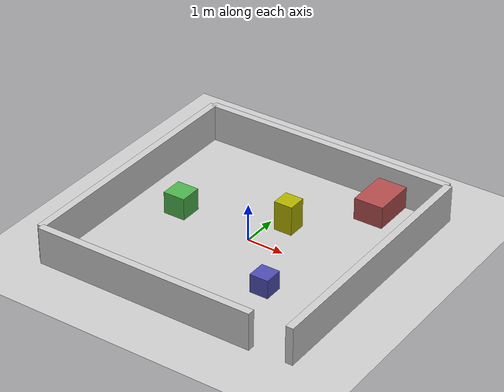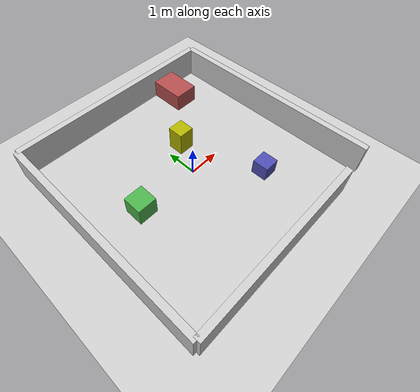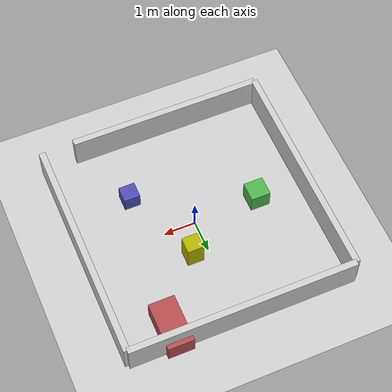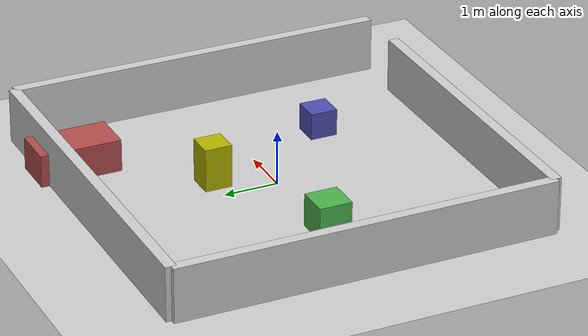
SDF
<?xml version="1.0" ?>
<sdf version="1.6">
  <world name="apartment">
    <!-- Physics Engine -->
    <physics name="default_physics" default="true" type="ode">
      <max_step_size>0.001</max_step_size>
      <real_time_factor>1.0</real_time_factor>
      <real_time_update_rate>1000</real_time_update_rate>
    </physics>

    <!-- Scene and Lighting -->
    <scene>
      <ambient>0.4 0.4 0.4 1.0</ambient>
      <background>0.7 0.7 0.7 1.0</background>
      <shadows>true</shadows>
      <grid>true</grid>
      <origin_visual>true</origin_visual>
    </scene>

    <!-- Light Source -->
    <include>
      <uri>model://sun</uri>
    </include>

    <!-- Ground Plane -->
    <include>
      <uri>model://ground_plane</uri>
      <pose>0 0 0 0 0 0</pose>
    </include>

    <!-- North Wall (horizontal, full 7m, 0.2m thick) -->
    <model name="wall_north">
      <static>true</static>
      <pose>0 3.5 0.5 0 0 0</pose>
      <link name="link">
        <inertial>
          <mass>14.0</mass>
          <inertia>
            <ixx>1.4</ixx>
            <ixy>0.0</ixy>
            <ixz>0.0</ixz>
            <iyy>1.4</iyy>
            <iyz>0.0</iyz>
            <izz>1.4</izz>
          </inertia>
        </inertial>
        <collision name="collision">
          <geometry>
            <box>
              <size>7 0.2 1</size>
            </box>
          </geometry>
        </collision>
        <visual name="visual">
          <geometry>
            <box>
              <size>7 0.2 1</size>
            </box>
          </geometry>
          <material>
            <ambient>0.8 0.8 0.8 1</ambient>
            <diffuse>0.8 0.8 0.8 1</diffuse>
          </material>
        </visual>
      </link>
    </model>

    <!-- South Wall (horizontal, 6m with 1m door gap on left) -->
    <model name="wall_south">
      <static>true</static>
      <pose>-0.5 -3.5 0.5 0 0 0</pose>
      <link name="link">
        <inertial>
          <mass>16.8</mass>
          <inertia>
            <ixx>1.68</ixx>
            <ixy>0.0</ixy>
            <ixz>0.0</ixz>
            <iyy>1.68</iyy>
            <iyz>0.0</iyz>
            <izz>1.68</izz>
          </inertia>
        </inertial>
        <collision name="collision">
          <geometry>
            <box>
              <size>6 0.2 1</size>
            </box>
          </geometry>
        </collision>
        <visual name="visual">
          <geometry>
            <box>
              <size>6 0.2 1</size>
            </box>
          </geometry>
          <material>
            <ambient>0.8 0.8 0.8 1</ambient>
            <diffuse>0.8 0.8 0.8 1</diffuse>
          </material>
        </visual>
      </link>
    </model>

    <!-- East Wall (horizontal, 0.2m thick, 7m long) -->
    <model name="wall_east">
      <static>true</static>
      <pose>3.5 0 0.5 0 0 0</pose>
      <link name="link">
        <inertial>
          <mass>14.0</mass>
          <inertia>
            <ixx>1.4</ixx>
            <ixy>0.0</ixy>
            <ixz>0.0</ixz>
            <iyy>1.4</iyy>
            <iyz>0.0</iyz>
            <izz>1.4</izz>
          </inertia>
        </inertial>
        <collision name="collision">
          <geometry>
            <box>
              <size>0.2 7 1</size>
            </box>
          </geometry>
        </collision>
        <visual name="visual">
          <geometry>
            <box>
              <size>0.2 7 1</size>
            </box>
          </geometry>
          <material>
            <ambient>0.8 0.8 0.8 1</ambient>
            <diffuse>0.8 0.8 0.8 1</diffuse>
          </material>
        </visual>
      </link>
    </model>

    <!-- West Wall (horizontal, 0.2m thick, 7m long) -->
    <model name="wall_west">
      <static>true</static>
      <pose>-3.5 0 0.5 0 0 0</pose>
      <link name="link">
        <inertial>
          <mass>14.0</mass>
          <inertia>
            <ixx>1.4</ixx>
            <ixy>0.0</ixy>
            <ixz>0.0</ixz>
            <iyy>1.4</iyy>
            <iyz>0.0</iyz>
            <izz>1.4</izz>
          </inertia>
        </inertial>
        <collision name="collision">
          <geometry>
            <box>
              <size>0.2 7 1</size>
            </box>
          </geometry>
        </collision>
        <visual name="visual">
          <geometry>
            <box>
              <size>0.2 7 1</size>
            </box>
          </geometry>
          <material>
            <ambient>0.8 0.8 0.8 1</ambient>
            <diffuse>0.8 0.8 0.8 1</diffuse>
          </material>
        </visual>
      </link>
    </model>

    <!-- Sofa (Red, reduced size) -->
    <model name="sofa">
      <static>true</static>
      <pose>2 3 0.3 0 0 0</pose>
      <link name="link">
        <inertial>
          <mass>16.0</mass>
          <inertia>
            <ixx>1.6</ixx>
            <ixy>0.0</ixy>
            <ixz>0.0</ixz>
            <iyy>1.6</iyy>
            <iyz>0.0</iyz>
            <izz>1.6</izz>
          </inertia>
        </inertial>
        <collision name="collision">
          <geometry>
            <box>
              <size>0.8 1.5 0.6</size>
            </box>
          </geometry>
        </collision>
        <visual name="visual">
          <geometry>
            <box>
              <size>0.8 1.5 0.6</size>
            </box>
          </geometry>
          <material>
            <ambient>0.7 0.3 0.3 1</ambient>
            <diffuse>0.7 0.3 0.3 1</diffuse>
          </material>
        </visual>
      </link>
    </model>

    <!-- Table (Green, reduced size) -->
    <model name="table">
      <static>true</static>
      <pose>-2 0 0.4 0 0 0</pose>
      <link name="link">
        <inertial>
          <mass>12.0</mass>
          <inertia>
            <ixx>1.2</ixx>
            <ixy>0.0</ixy>
            <ixz>0.0</ixz>
            <iyy>1.2</iyy>
            <iyz>0.0</iyz>
            <izz>1.2</izz>
          </inertia>
        </inertial>
        <collision name="collision">
          <geometry>
            <box>
              <size>0.6 0.6 0.6</size>
            </box>
          </geometry>
        </collision>
        <visual name="visual">
          <geometry>
            <box>
              <size>0.6 0.6 0.6</size>
            </box>
          </geometry>
          <material>
            <ambient>0.3 0.7 0.3 1</ambient>
            <diffuse>0.3 0.7 0.3 1</diffuse>
          </material>
        </visual>
      </link>
    </model>

    <!-- Chair (Yellow) -->
    <model name="chair">
      <static>true</static>
      <pose>0.5 1 0.4 0 0 0</pose>
      <link name="link">
        <inertial>
          <mass>5.0</mass>
          <inertia>
            <ixx>0.5</ixx>
            <ixy>0.0</ixy>
            <ixz>0.0</ixz>
            <iyy>0.5</iyy>
            <iyz>0.0</iyz>
            <izz>0.5</izz>
          </inertia>
        </inertial>
        <collision name="collision">
          <geometry>
            <box>
              <size>0.5 0.5 0.8</size>
            </box>
          </geometry>
        </collision>
        <visual name="visual">
          <geometry>
            <box>
              <size>0.5 0.5 0.8</size>
            </box>
          </geometry>
          <material>
            <ambient>0.7 0.7 0.0 1</ambient>
            <diffuse>0.7 0.7 0.0 1</diffuse>
          </material>
        </visual>
      </link>
    </model>

    <!-- Box (Blue) -->
    <model name="box">
      <static>true</static>
      <pose>1.5 -1.5 0.25 0 0 0</pose>
      <link name="link">
        <inertial>
          <mass>5.0</mass>
          <inertia>
            <ixx>0.5</ixx>
            <ixy>0.0</ixy>
            <ixz>0.0</ixz>
            <iyy>0.5</iyy>
            <iyz>0.0</iyz>
            <izz>0.5</izz>
          </inertia>
        </inertial>
        <collision name="collision">
          <geometry>
            <box>
              <size>0.5 0.5 0.5</size>
            </box>
          </geometry>
        </collision>
        <visual name="visual">
          <geometry>
            <box>
              <size>0.5 0.5 0.5</size>
            </box>
          </geometry>
          <material>
            <ambient>0.3 0.3 0.7 1</ambient>
            <diffuse>0.3 0.3 0.7 1</diffuse>
          </material>
        </visual>
      </link>
    </model>
  </world>
</sdf>
